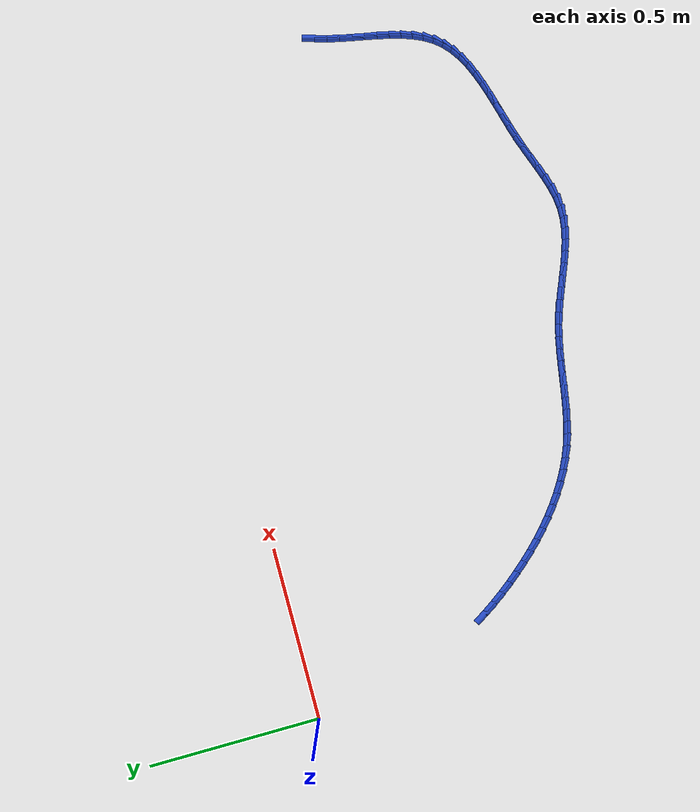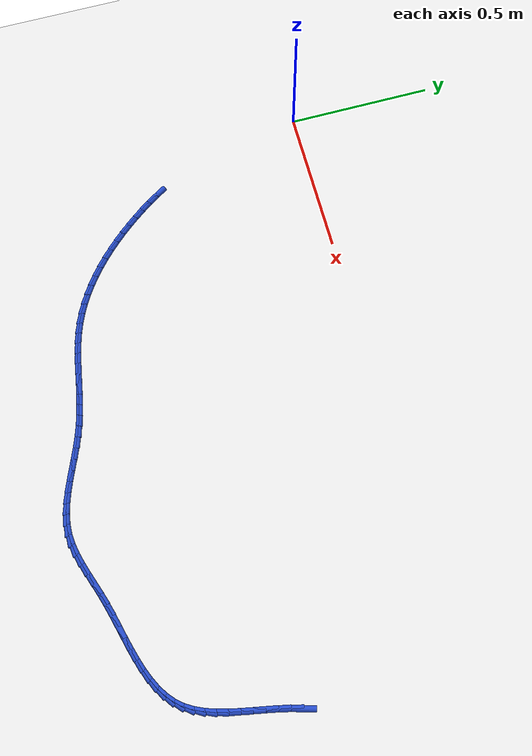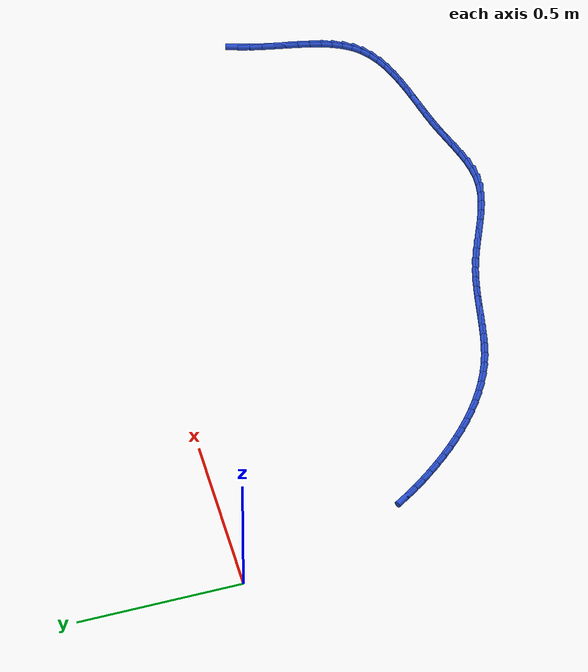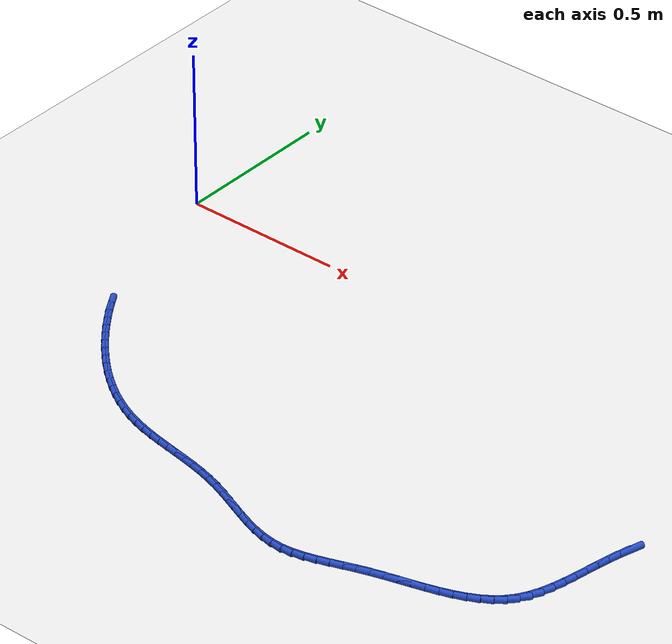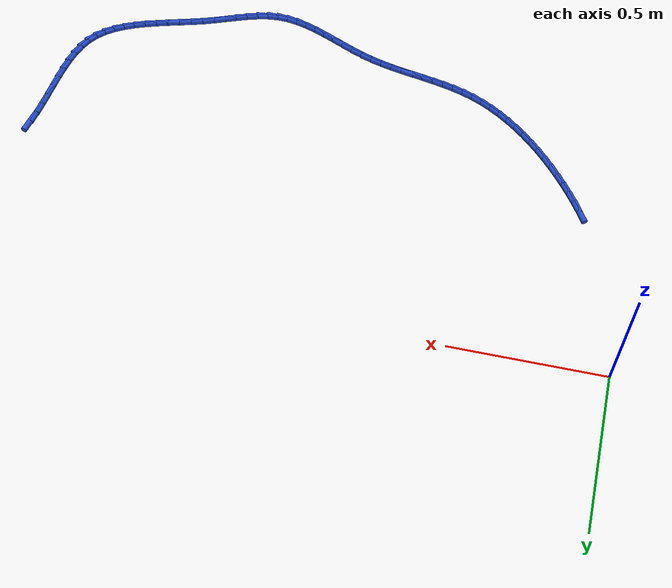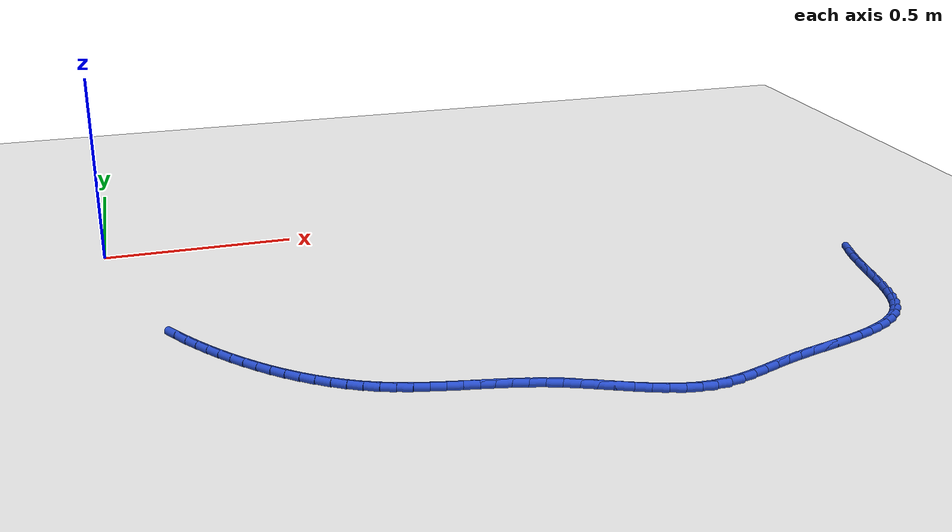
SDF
<sdf version="1.6">
 <world name="default">
  <model name="ground_plane">
   <static>1</static>
   <link name="link">
    <collision name="collision">
     <geometry><plane><normal>0 0 1</normal><size>100 100</size></plane></geometry>
     <surface><friction><ode><mu>100</mu><mu2>50</mu2></ode></friction></surface>
    </collision>
    <visual name="visual">
     <cast_shadows>0</cast_shadows>
     <geometry><plane><normal>0 0 1</normal><size>100 100</size></plane></geometry>
     <material>
      <script><uri>file://media/materials/scripts/gazebo.material</uri><name>Gazebo/WhiteGlow</name></script>
     </material>
    </visual>
   </link>
  </model>
  <model name="line">
   <link name="link_111">
    <pose>1.9547673354920772 -0.5197053380722353 0.01 0 1.57 1.2870785673746663</pose>
    <collision name="collision">
     <geometry><cylinder><radius>0.01</radius><length>0.08</length></cylinder></geometry>
    </collision>
    <visual name="visual">
     <material>
      <script><name>Gazebo/Blue</name><uri>file://media/materials/scripts/gazebo.material</uri></script>
     </material>
     <geometry><cylinder><radius>0.01</radius><length>0.08</length></cylinder></geometry>
    </visual>
   </link>
   <link name="link_112">
    <pose>1.9442324433761768 -0.5558352302679391 0.01 0 1.57 1.3362149796250866</pose>
    <collision name="collision">
     <geometry><cylinder><radius>0.01</radius><length>0.08</length></cylinder></geometry>
    </collision>
    <visual name="visual">
     <material>
      <script><name>Gazebo/Blue</name><uri>file://media/materials/scripts/gazebo.material</uri></script>
     </material>
     <geometry><cylinder><radius>0.01</radius><length>0.08</length></cylinder></geometry>
    </visual>
   </link>
   <link name="link_113">
    <pose>1.9353731261702165 -0.59290643521372 0.01 0 1.57 1.366538693277688</pose>
    <collision name="collision">
     <geometry><cylinder><radius>0.01</radius><length>0.08</length></cylinder></geometry>
    </collision>
    <visual name="visual">
     <material>
      <script><name>Gazebo/Blue</name><uri>file://media/materials/scripts/gazebo.material</uri></script>
     </material>
     <geometry><cylinder><radius>0.01</radius><length>0.08</length></cylinder></geometry>
    </visual>
   </link>
   <link name="link_114">
    <pose>1.9275965317220234 -0.6304479593153932 0.01 0 1.57 1.3790790736784413</pose>
    <collision name="collision">
     <geometry><cylinder><radius>0.01</radius><length>0.08</length></cylinder></geometry>
    </collision>
    <visual name="visual">
     <material>
      <script><name>Gazebo/Blue</name><uri>file://media/materials/scripts/gazebo.material</uri></script>
     </material>
     <geometry><cylinder><radius>0.01</radius><length>0.08</length></cylinder></geometry>
    </visual>
   </link>
   <link name="link_115">
    <pose>1.9203098078794274 -0.6679888089787748 0.01 0 1.57 1.374026778230979</pose>
    <collision name="collision">
     <geometry><cylinder><radius>0.01</radius><length>0.08</length></cylinder></geometry>
    </collision>
    <visual name="visual">
     <material>
      <script><name>Gazebo/Blue</name><uri>file://media/materials/scripts/gazebo.material</uri></script>
     </material>
     <geometry><cylinder><radius>0.01</radius><length>0.08</length></cylinder></geometry>
    </visual>
   </link>
   <link name="link_116">
    <pose>1.9129201024902556 -0.7050579906096804 0.01 0 1.57 1.3506131804759265</pose>
    <collision name="collision">
     <geometry><cylinder><radius>0.01</radius><length>0.08</length></cylinder></geometry>
    </collision>
    <visual name="visual">
     <material>
      <script><name>Gazebo/Blue</name><uri>file://media/materials/scripts/gazebo.material</uri></script>
     </material>
     <geometry><cylinder><radius>0.01</radius><length>0.08</length></cylinder></geometry>
    </visual>
   </link>
   <link name="link_117">
    <pose>1.9048345634023383 -0.741184510613927 0.01 0 1.57 1.307037465918735</pose>
    <collision name="collision">
     <geometry><cylinder><radius>0.01</radius><length>0.08</length></cylinder></geometry>
    </collision>
    <visual name="visual">
     <material>
      <script><name>Gazebo/Blue</name><uri>file://media/materials/scripts/gazebo.material</uri></script>
     </material>
     <geometry><cylinder><radius>0.01</radius><length>0.08</length></cylinder></geometry>
    </visual>
   </link>
   <link name="link_118">
    <pose>1.8954603384635025 -0.7758973753973291 0.01 0 1.57 1.240488761087318</pose>
    <collision name="collision">
     <geometry><cylinder><radius>0.01</radius><length>0.08</length></cylinder></geometry>
    </collision>
    <visual name="visual">
     <material>
      <script><name>Gazebo/Blue</name><uri>file://media/materials/scripts/gazebo.material</uri></script>
     </material>
     <geometry><cylinder><radius>0.01</radius><length>0.08</length></cylinder></geometry>
    </visual>
   </link>
   <link name="link_119">
    <pose>1.8842045755215775 -0.8087255913657043 0.01 0 1.57 1.1474650623564617</pose>
    <collision name="collision">
     <geometry><cylinder><radius>0.01</radius><length>0.08</length></cylinder></geometry>
    </collision>
    <visual name="visual">
     <material>
      <script><name>Gazebo/Blue</name><uri>file://media/materials/scripts/gazebo.material</uri></script>
     </material>
     <geometry><cylinder><radius>0.01</radius><length>0.08</length></cylinder></geometry>
    </visual>
   </link>
   <link name="link_120">
    <pose>1.870474422424392 -0.8391981649248682 0.01 0 1.57 1.0248146214956846</pose>
    <collision name="collision">
     <geometry><cylinder><radius>0.01</radius><length>0.08</length></cylinder></geometry>
    </collision>
    <visual name="visual">
     <material>
      <script><name>Gazebo/Blue</name><uri>file://media/materials/scripts/gazebo.material</uri></script>
     </material>
     <geometry><cylinder><radius>0.01</radius><length>0.08</length></cylinder></geometry>
    </visual>
   </link>
   <link name="link_121">
    <pose>1.8536770270197749 -0.866844102480637 0.01 0 1.57 0.8729196618530354</pose>
    <collision name="collision">
     <geometry><cylinder><radius>0.01</radius><length>0.08</length></cylinder></geometry>
    </collision>
    <visual name="visual">
     <material>
      <script><name>Gazebo/Blue</name><uri>file://media/materials/scripts/gazebo.material</uri></script>
     </material>
     <geometry><cylinder><radius>0.01</radius><length>0.08</length></cylinder></geometry>
    </visual>
   </link>
   <link name="link_122">
    <pose>1.833241203121529 -0.8912111870262845 0.01 0 1.57 0.7173904593773975</pose>
    <collision name="collision">
     <geometry><cylinder><radius>0.01</radius><length>0.08</length></cylinder></geometry>
    </collision>
    <visual name="visual">
     <material>
      <script><name>Gazebo/Blue</name><uri>file://media/materials/scripts/gazebo.material</uri></script>
     </material>
     <geometry><cylinder><radius>0.01</radius><length>0.08</length></cylinder></geometry>
    </visual>
   </link>
   <link name="link_123">
    <pose>1.8090938275280277 -0.9122788427383289 0.01 0 1.57 0.5852152706320818</pose>
    <collision name="collision">
     <geometry><cylinder><radius>0.01</radius><length>0.08</length></cylinder></geometry>
    </collision>
    <visual name="visual">
     <material>
      <script><name>Gazebo/Blue</name><uri>file://media/materials/scripts/gazebo.material</uri></script>
     </material>
     <geometry><cylinder><radius>0.01</radius><length>0.08</length></cylinder></geometry>
    </visual>
   </link>
   <link name="link_124">
    <pose>1.781659698822675 -0.9304580126073972 0.01 0 1.57 0.47893845747454733</pose>
    <collision name="collision">
     <geometry><cylinder><radius>0.01</radius><length>0.08</length></cylinder></geometry>
    </collision>
    <visual name="visual">
     <material>
      <script><name>Gazebo/Blue</name><uri>file://media/materials/scripts/gazebo.material</uri></script>
     </material>
     <geometry><cylinder><radius>0.01</radius><length>0.08</length></cylinder></geometry>
    </visual>
   </link>
   <link name="link_125">
    <pose>1.7513852533149412 -0.9461783917377471 0.01 0 1.57 0.3968623892144433</pose>
    <collision name="collision">
     <geometry><cylinder><radius>0.01</radius><length>0.08</length></cylinder></geometry>
    </collision>
    <visual name="visual">
     <material>
      <script><name>Gazebo/Blue</name><uri>file://media/materials/scripts/gazebo.material</uri></script>
     </material>
     <geometry><cylinder><radius>0.01</radius><length>0.08</length></cylinder></geometry>
    </visual>
   </link>
   <link name="link_126">
    <pose>1.718716927314295 -0.9598696752336366 0.01 0 1.57 0.3360663803707801</pose>
    <collision name="collision">
     <geometry><cylinder><radius>0.01</radius><length>0.08</length></cylinder></geometry>
    </collision>
    <visual name="visual">
     <material>
      <script><name>Gazebo/Blue</name><uri>file://media/materials/scripts/gazebo.material</uri></script>
     </material>
     <geometry><cylinder><radius>0.01</radius><length>0.08</length></cylinder></geometry>
    </visual>
   </link>
   <link name="link_127">
    <pose>1.684101157130207 -0.9719615581993233 0.01 0 1.57 0.29366893942829575</pose>
    <collision name="collision">
     <geometry><cylinder><radius>0.01</radius><length>0.08</length></cylinder></geometry>
    </collision>
    <visual name="visual">
     <material>
      <script><name>Gazebo/Blue</name><uri>file://media/materials/scripts/gazebo.material</uri></script>
     </material>
     <geometry><cylinder><radius>0.01</radius><length>0.08</length></cylinder></geometry>
    </visual>
   </link>
   <link name="link_128">
    <pose>1.647984379072147 -0.982883735739065 0.01 0 1.57 0.2673666494880777</pose>
    <collision name="collision">
     <geometry><cylinder><radius>0.01</radius><length>0.08</length></cylinder></geometry>
    </collision>
    <visual name="visual">
     <material>
      <script><name>Gazebo/Blue</name><uri>file://media/materials/scripts/gazebo.material</uri></script>
     </material>
     <geometry><cylinder><radius>0.01</radius><length>0.08</length></cylinder></geometry>
    </visual>
   </link>
   <link name="link_129">
    <pose>1.6108130294495842 -0.9930659029571193 0.01 0 1.57 0.25558715599111437</pose>
    <collision name="collision">
     <geometry><cylinder><radius>0.01</radius><length>0.08</length></cylinder></geometry>
    </collision>
    <visual name="visual">
     <material>
      <script><name>Gazebo/Blue</name><uri>file://media/materials/scripts/gazebo.material</uri></script>
     </material>
     <geometry><cylinder><radius>0.01</radius><length>0.08</length></cylinder></geometry>
    </visual>
   </link>
   <link name="link_130">
    <pose>1.5730335445719883 -1.0029377549577434 0.01 0 1.57 0.2574891020391714</pose>
    <collision name="collision">
     <geometry><cylinder><radius>0.01</radius><length>0.08</length></cylinder></geometry>
    </collision>
    <visual name="visual">
     <material>
      <script><name>Gazebo/Blue</name><uri>file://media/materials/scripts/gazebo.material</uri></script>
     </material>
     <geometry><cylinder><radius>0.01</radius><length>0.08</length></cylinder></geometry>
    </visual>
   </link>
   <link name="link_131">
    <pose>1.5350923607488296 -1.0129289868451954 0.01 0 1.57 0.2729225586546203</pose>
    <collision name="collision">
     <geometry><cylinder><radius>0.01</radius><length>0.08</length></cylinder></geometry>
    </collision>
    <visual name="visual">
     <material>
      <script><name>Gazebo/Blue</name><uri>file://media/materials/scripts/gazebo.material</uri></script>
     </material>
     <geometry><cylinder><radius>0.01</radius><length>0.08</length></cylinder></geometry>
    </visual>
   </link>
   <link name="link_132">
    <pose>1.497435914289578 -1.0234692937237324 0.01 0 1.57 0.30205258996021045</pose>
    <collision name="collision">
     <geometry><cylinder><radius>0.01</radius><length>0.08</length></cylinder></geometry>
    </collision>
    <visual name="visual">
     <material>
      <script><name>Gazebo/Blue</name><uri>file://media/materials/scripts/gazebo.material</uri></script>
     </material>
     <geometry><cylinder><radius>0.01</radius><length>0.08</length></cylinder></geometry>
    </visual>
   </link>
   <link name="link_133">
    <pose>1.4605052086153005 -1.0349764097586402 0.01 0 1.57 0.330600209666746</pose>
    <collision name="collision">
     <geometry><cylinder><radius>0.01</radius><length>0.08</length></cylinder></geometry>
    </collision>
    <visual name="visual">
     <material>
      <script><name>Gazebo/Blue</name><uri>file://media/materials/scripts/gazebo.material</uri></script>
     </material>
     <geometry><cylinder><radius>0.01</radius><length>0.08</length></cylinder></geometry>
    </visual>
   </link>
   <link name="link_134">
    <pose>1.4244985444492475 -1.047333739686249 0.01 0 1.57 0.3373606441409697</pose>
    <collision name="collision">
     <geometry><cylinder><radius>0.01</radius><length>0.08</length></cylinder></geometry>
    </collision>
    <visual name="visual">
     <material>
      <script><name>Gazebo/Blue</name><uri>file://media/materials/scripts/gazebo.material</uri></script>
     </material>
     <geometry><cylinder><radius>0.01</radius><length>0.08</length></cylinder></geometry>
    </visual>
   </link>
   <link name="link_135">
    <pose>1.3892794039746352 -1.0596875584091172 0.01 0 1.57 0.3194560972445056</pose>
    <collision name="collision">
     <geometry><cylinder><radius>0.01</radius><length>0.08</length></cylinder></geometry>
    </collision>
    <visual name="visual">
     <material>
      <script><name>Gazebo/Blue</name><uri>file://media/materials/scripts/gazebo.material</uri></script>
     </material>
     <geometry><cylinder><radius>0.01</radius><length>0.08</length></cylinder></geometry>
    </visual>
   </link>
   <link name="link_136">
    <pose>1.354686813358083 -1.0711302989504163 0.01 0 1.57 0.2748698638684884</pose>
    <collision name="collision">
     <geometry><cylinder><radius>0.01</radius><length>0.08</length></cylinder></geometry>
    </collision>
    <visual name="visual">
     <material>
      <script><name>Gazebo/Blue</name><uri>file://media/materials/scripts/gazebo.material</uri></script>
     </material>
     <geometry><cylinder><radius>0.01</radius><length>0.08</length></cylinder></geometry>
    </visual>
   </link>
   <link name="link_137">
    <pose>1.3205597987662085 -1.080754394333316 0.01 0 1.57 0.20118512210404974</pose>
    <collision name="collision">
     <geometry><cylinder><radius>0.01</radius><length>0.08</length></cylinder></geometry>
    </collision>
    <visual name="visual">
     <material>
      <script><name>Gazebo/Blue</name><uri>file://media/materials/scripts/gazebo.material</uri></script>
     </material>
     <geometry><cylinder><radius>0.01</radius><length>0.08</length></cylinder></geometry>
    </visual>
   </link>
   <link name="link_138">
    <pose>1.2867373863656313 -1.0876522775809878 0.01 0 1.57 0.09661694382829553</pose>
    <collision name="collision">
     <geometry><cylinder><radius>0.01</radius><length>0.08</length></cylinder></geometry>
    </collision>
    <visual name="visual">
     <material>
      <script><name>Gazebo/Blue</name><uri>file://media/materials/scripts/gazebo.material</uri></script>
     </material>
     <geometry><cylinder><radius>0.01</radius><length>0.08</length></cylinder></geometry>
    </visual>
   </link>
   <link name="link_139">
    <pose>1.25305860232297 -1.0909163817166019 0.01 0 1.57 -0.03272101727902869</pose>
    <collision name="collision">
     <geometry><cylinder><radius>0.01</radius><length>0.08</length></cylinder></geometry>
    </collision>
    <visual name="visual">
     <material>
      <script><name>Gazebo/Blue</name><uri>file://media/materials/scripts/gazebo.material</uri></script>
     </material>
     <geometry><cylinder><radius>0.01</radius><length>0.08</length></cylinder></geometry>
    </visual>
   </link>
   <link name="link_140">
    <pose>1.219376810026298 -1.0898138857128352 0.01 0 1.57 -0.15124935612484985</pose>
    <collision name="collision">
     <geometry><cylinder><radius>0.01</radius><length>0.08</length></cylinder></geometry>
    </collision>
    <visual name="visual">
     <material>
      <script><name>Gazebo/Blue</name><uri>file://media/materials/scripts/gazebo.material</uri></script>
     </material>
     <geometry><cylinder><radius>0.01</radius><length>0.08</length></cylinder></geometry>
    </visual>
   </link>
   <link name="link_141">
    <pose>1.185632242810534 -1.0846707630510084 0.01 0 1.57 -0.24504674444026484</pose>
    <collision name="collision">
     <geometry><cylinder><radius>0.01</radius><length>0.08</length></cylinder></geometry>
    </collision>
    <visual name="visual">
     <material>
      <script><name>Gazebo/Blue</name><uri>file://media/materials/scripts/gazebo.material</uri></script>
     </material>
     <geometry><cylinder><radius>0.01</radius><length>0.08</length></cylinder></geometry>
    </visual>
   </link>
   <link name="link_142">
    <pose>1.1517976806922863 -1.0762096750095187 0.01 0 1.57 -0.31480149050878714</pose>
    <collision name="collision">
     <geometry><cylinder><radius>0.01</radius><length>0.08</length></cylinder></geometry>
    </collision>
    <visual name="visual">
     <material>
      <script><name>Gazebo/Blue</name><uri>file://media/materials/scripts/gazebo.material</uri></script>
     </material>
     <geometry><cylinder><radius>0.01</radius><length>0.08</length></cylinder></geometry>
    </visual>
   </link>
   <link name="link_143">
    <pose>1.1178459609578977 -1.0651539808858403 0.01 0 1.57 -0.3623893679236238</pose>
    <collision name="collision">
     <geometry><cylinder><radius>0.01</radius><length>0.08</length></cylinder></geometry>
    </collision>
    <visual name="visual">
     <material>
      <script><name>Gazebo/Blue</name><uri>file://media/materials/scripts/gazebo.material</uri></script>
     </material>
     <geometry><cylinder><radius>0.01</radius><length>0.08</length></cylinder></geometry>
    </visual>
   </link>
   <link name="link_144">
    <pose>1.0837499208937107 -1.0522270399774485 0.01 0 1.57 -0.38972522922864394</pose>
    <collision name="collision">
     <geometry><cylinder><radius>0.01</radius><length>0.08</length></cylinder></geometry>
    </collision>
    <visual name="visual">
     <material>
      <script><name>Gazebo/Blue</name><uri>file://media/materials/scripts/gazebo.material</uri></script>
     </material>
     <geometry><cylinder><radius>0.01</radius><length>0.08</length></cylinder></geometry>
    </visual>
   </link>
   <link name="link_145">
    <pose>1.0494823977860686 -1.038152211581818 0.01 0 1.57 -0.398209057663946</pose>
    <collision name="collision">
     <geometry><cylinder><radius>0.01</radius><length>0.08</length></cylinder></geometry>
    </collision>
    <visual name="visual">
     <material>
      <script><name>Gazebo/Blue</name><uri>file://media/materials/scripts/gazebo.material</uri></script>
     </material>
     <geometry><cylinder><radius>0.01</radius><length>0.08</length></cylinder></geometry>
    </visual>
   </link>
   <link name="link_146">
    <pose>1.0150162289213118 -1.0236528549964228 0.01 0 1.57 -0.38852495685310634</pose>
    <collision name="collision">
     <geometry><cylinder><radius>0.01</radius><length>0.08</length></cylinder></geometry>
    </collision>
    <visual name="visual">
     <material>
      <script><name>Gazebo/Blue</name><uri>file://media/materials/scripts/gazebo.material</uri></script>
     </material>
     <geometry><cylinder><radius>0.01</radius><length>0.08</length></cylinder></geometry>
    </visual>
   </link>
   <link name="link_147">
    <pose>0.9803242515857842 -1.009452329518738 0.01 0 1.57 -0.36062540035302704</pose>
    <collision name="collision">
     <geometry><cylinder><radius>0.01</radius><length>0.08</length></cylinder></geometry>
    </collision>
    <visual name="visual">
     <material>
      <script><name>Gazebo/Blue</name><uri>file://media/materials/scripts/gazebo.material</uri></script>
     </material>
     <geometry><cylinder><radius>0.01</radius><length>0.08</length></cylinder></geometry>
    </visual>
   </link>
   <link name="link_148">
    <pose>0.9453793030658276 -0.9962739944462384 0.01 0 1.57 -0.31441262809997944</pose>
    <collision name="collision">
     <geometry><cylinder><radius>0.01</radius><length>0.08</length></cylinder></geometry>
    </collision>
    <visual name="visual">
     <material>
      <script><name>Gazebo/Blue</name><uri>file://media/materials/scripts/gazebo.material</uri></script>
     </material>
     <geometry><cylinder><radius>0.01</radius><length>0.08</length></cylinder></geometry>
    </visual>
   </link>
   <link name="link_149">
    <pose>0.9101566057053121 -0.9848195792433871 0.01 0 1.57 -0.26349717340947537</pose>
    <collision name="collision">
     <geometry><cylinder><radius>0.01</radius><length>0.08</length></cylinder></geometry>
    </collision>
    <visual name="visual">
     <material>
      <script><name>Gazebo/Blue</name><uri>file://media/materials/scripts/gazebo.material</uri></script>
     </material>
     <geometry><cylinder><radius>0.01</radius><length>0.08</length></cylinder></geometry>
    </visual>
   </link>
   <link name="link_150">
    <pose>0.8746907975501643 -0.9752519786929652 0.01 0 1.57 -0.22313119086529593</pose>
    <collision name="collision">
     <geometry><cylinder><radius>0.01</radius><length>0.08</length></cylinder></geometry>
    </collision>
    <visual name="visual">
     <material>
      <script><name>Gazebo/Blue</name><uri>file://media/materials/scripts/gazebo.material</uri></script>
     </material>
     <geometry><cylinder><radius>0.01</radius><length>0.08</length></cylinder></geometry>
    </visual>
   </link>
   <link name="link_151">
    <pose>0.8390785814581597 -0.9671712284011587 0.01 0 1.57 -0.19438720559236378</pose>
    <collision name="collision">
     <geometry><cylinder><radius>0.01</radius><length>0.08</length></cylinder></geometry>
    </collision>
    <visual name="visual">
     <material>
      <script><name>Gazebo/Blue</name><uri>file://media/materials/scripts/gazebo.material</uri></script>
     </material>
     <geometry><cylinder><radius>0.01</radius><length>0.08</length></cylinder></geometry>
    </visual>
   </link>
   <link name="link_152">
    <pose>0.8034195754826082 -0.9601509263759543 0.01 0 1.57 -0.1774710959294091</pose>
    <collision name="collision">
     <geometry><cylinder><radius>0.01</radius><length>0.08</length></cylinder></geometry>
    </collision>
    <visual name="visual">
     <material>
      <script><name>Gazebo/Blue</name><uri>file://media/materials/scripts/gazebo.material</uri></script>
     </material>
     <geometry><cylinder><radius>0.01</radius><length>0.08</length></cylinder></geometry>
    </visual>
   </link>
   <link name="link_153">
    <pose>0.7678133976768172 -0.9537646706253383 0.01 0 1.57 -0.17253972522598446</pose>
    <collision name="collision">
     <geometry><cylinder><radius>0.01</radius><length>0.08</length></cylinder></geometry>
    </collision>
    <visual name="visual">
     <material>
      <script><name>Gazebo/Blue</name><uri>file://media/materials/scripts/gazebo.material</uri></script>
     </material>
     <geometry><cylinder><radius>0.01</radius><length>0.08</length></cylinder></geometry>
    </visual>
   </link>
   <link name="link_154">
    <pose>0.7323596660940974 -0.9475860591572975 0.01 0 1.57 -0.17977281827965122</pose>
    <collision name="collision">
     <geometry><cylinder><radius>0.01</radius><length>0.08</length></cylinder></geometry>
    </collision>
    <visual name="visual">
     <material>
      <script><name>Gazebo/Blue</name><uri>file://media/materials/scripts/gazebo.material</uri></script>
     </material>
     <geometry><cylinder><radius>0.01</radius><length>0.08</length></cylinder></geometry>
    </visual>
   </link>
   <link name="link_155">
    <pose>0.697157998787758 -0.9411886899798187 0.01 0 1.57 -0.1993959681775991</pose>
    <collision name="collision">
     <geometry><cylinder><radius>0.01</radius><length>0.08</length></cylinder></geometry>
    </collision>
    <visual name="visual">
     <material>
      <script><name>Gazebo/Blue</name><uri>file://media/materials/scripts/gazebo.material</uri></script>
     </material>
     <geometry><cylinder><radius>0.01</radius><length>0.08</length></cylinder></geometry>
    </visual>
   </link>
   <link name="link_156">
    <pose>0.6623080138111083 -0.9341461611008884 0.01 0 1.57 -0.23164929053815056</pose>
    <collision name="collision">
     <geometry><cylinder><radius>0.01</radius><length>0.08</length></cylinder></geometry>
    </collision>
    <visual name="visual">
     <material>
      <script><name>Gazebo/Blue</name><uri>file://media/materials/scripts/gazebo.material</uri></script>
     </material>
     <geometry><cylinder><radius>0.01</radius><length>0.08</length></cylinder></geometry>
    </visual>
   </link>
   <link name="link_157">
    <pose>0.6279093292174576 -0.9260320705284935 0.01 0 1.57 -0.27669458947961745</pose>
    <collision name="collision">
     <geometry><cylinder><radius>0.01</radius><length>0.08</length></cylinder></geometry>
    </collision>
    <visual name="visual">
     <material>
      <script><name>Gazebo/Blue</name><uri>file://media/materials/scripts/gazebo.material</uri></script>
     </material>
     <geometry><cylinder><radius>0.01</radius><length>0.08</length></cylinder></geometry>
    </visual>
   </link>
   <link name="link_158">
    <pose>0.594061563060115 -0.9164200162706194 0.01 0 1.57 -0.33443732668324105</pose>
    <collision name="collision">
     <geometry><cylinder><radius>0.01</radius><length>0.08</length></cylinder></geometry>
    </collision>
    <visual name="visual">
     <material>
      <script><name>Gazebo/Blue</name><uri>file://media/materials/scripts/gazebo.material</uri></script>
     </material>
     <geometry><cylinder><radius>0.01</radius><length>0.08</length></cylinder></geometry>
    </visual>
   </link>
   <link name="link_159">
    <pose>0.560864240276034 -0.9048842661076141 0.01 0 1.57 -0.39997488895781486</pose>
    <collision name="collision">
     <geometry><cylinder><radius>0.01</radius><length>0.08</length></cylinder></geometry>
    </collision>
    <visual name="visual">
     <material>
      <script><name>Gazebo/Blue</name><uri>file://media/materials/scripts/gazebo.material</uri></script>
     </material>
     <geometry><cylinder><radius>0.01</radius><length>0.08</length></cylinder></geometry>
    </visual>
   </link>
   <link name="link_160">
    <pose>0.5283948761264582 -0.8911574002030993 0.01 0 1.57 -0.4628080751647144</pose>
    <collision name="collision">
     <geometry><cylinder><radius>0.01</radius><length>0.08</length></cylinder></geometry>
    </collision>
    <visual name="visual">
     <material>
      <script><name>Gazebo/Blue</name><uri>file://media/materials/scripts/gazebo.material</uri></script>
     </material>
     <geometry><cylinder><radius>0.01</radius><length>0.08</length></cylinder></geometry>
    </visual>
   </link>
   <link name="link_161">
    <pose>0.49668071535026653 -0.8753335872470704 0.01 0 1.57 -0.5215084731160863</pose>
    <collision name="collision">
     <geometry><cylinder><radius>0.01</radius><length>0.08</length></cylinder></geometry>
    </collision>
    <visual name="visual">
     <material>
      <script><name>Gazebo/Blue</name><uri>file://media/materials/scripts/gazebo.material</uri></script>
     </material>
     <geometry><cylinder><radius>0.01</radius><length>0.08</length></cylinder></geometry>
    </visual>
   </link>
   <link name="link_162">
    <pose>0.4657420166164175 -0.8575572457102747 0.01 0 1.57 -0.5761773316368571</pose>
    <collision name="collision">
     <geometry><cylinder><radius>0.01</radius><length>0.08</length></cylinder></geometry>
    </collision>
    <visual name="visual">
     <material>
      <script><name>Gazebo/Blue</name><uri>file://media/materials/scripts/gazebo.material</uri></script>
     </material>
     <geometry><cylinder><radius>0.01</radius><length>0.08</length></cylinder></geometry>
    </visual>
   </link>
   <link name="link_163">
    <pose>0.4355990385938698 -0.8379727940634579 0.01 0 1.57 -0.6269967651213177</pose>
    <collision name="collision">
     <geometry><cylinder><radius>0.01</radius><length>0.08</length></cylinder></geometry>
    </collision>
    <visual name="visual">
     <material>
      <script><name>Gazebo/Blue</name><uri>file://media/materials/scripts/gazebo.material</uri></script>
     </material>
     <geometry><cylinder><radius>0.01</radius><length>0.08</length></cylinder></geometry>
    </visual>
   </link>
   <link name="link_164">
    <pose>0.4062720399515818 -0.8167246507773657 0.01 0 1.57 -0.6742015528096535</pose>
    <collision name="collision">
     <geometry><cylinder><radius>0.01</radius><length>0.08</length></cylinder></geometry>
    </collision>
    <visual name="visual">
     <material>
      <script><name>Gazebo/Blue</name><uri>file://media/materials/scripts/gazebo.material</uri></script>
     </material>
     <geometry><cylinder><radius>0.01</radius><length>0.08</length></cylinder></geometry>
    </visual>
   </link>
   <link name="link_165">
    <pose>0.3777812793585126 -0.7939572343227452 0.01 0 1.57 -0.7180566055183685</pose>
    <collision name="collision">
     <geometry><cylinder><radius>0.01</radius><length>0.08</length></cylinder></geometry>
    </collision>
    <visual name="visual">
     <material>
      <script><name>Gazebo/Blue</name><uri>file://media/materials/scripts/gazebo.material</uri></script>
     </material>
     <geometry><cylinder><radius>0.01</radius><length>0.08</length></cylinder></geometry>
    </visual>
   </link>
   <link name="link_166">
    <pose>0.35014701548362104 -0.7698149631703423 0.01 0 1.57 -0.7588401396099068</pose>
    <collision name="collision">
     <geometry><cylinder><radius>0.01</radius><length>0.08</length></cylinder></geometry>
    </collision>
    <visual name="visual">
     <material>
      <script><name>Gazebo/Blue</name><uri>file://media/materials/scripts/gazebo.material</uri></script>
     </material>
     <geometry><cylinder><radius>0.01</radius><length>0.08</length></cylinder></geometry>
    </visual>
   </link>
   <link name="link_167">
    <pose>0.3233895069958647 -0.7444422557909021 0.01 0 1.57 -0.7968319087740319</pose>
    <collision name="collision">
     <geometry><cylinder><radius>0.01</radius><length>0.08</length></cylinder></geometry>
    </collision>
    <visual name="visual">
     <material>
      <script><name>Gazebo/Blue</name><uri>file://media/materials/scripts/gazebo.material</uri></script>
     </material>
     <geometry><cylinder><radius>0.01</radius><length>0.08</length></cylinder></geometry>
    </visual>
   </link>
   <link name="link_168">
    <pose>0.29752901256420283 -0.7179835306551715 0.01 0 1.57 -0.8323055761819692</pose>
    <collision name="collision">
     <geometry><cylinder><radius>0.01</radius><length>0.08</length></cylinder></geometry>
    </collision>
    <visual name="visual">
     <material>
      <script><name>Gazebo/Blue</name><uri>file://media/materials/scripts/gazebo.material</uri></script>
     </material>
     <geometry><cylinder><radius>0.01</radius><length>0.08</length></cylinder></geometry>
    </visual>
   </link>
   <link name="link_169">
    <pose>0.27258579085759405 -0.6905832062338967 0.01 0 1.57 -0.8655242989248019</pose>
    <collision name="collision">
     <geometry><cylinder><radius>0.01</radius><length>0.08</length></cylinder></geometry>
    </collision>
    <visual name="visual">
     <material>
      <script><name>Gazebo/Blue</name><uri>file://media/materials/scripts/gazebo.material</uri></script>
     </material>
     <geometry><cylinder><radius>0.01</radius><length>0.08</length></cylinder></geometry>
    </visual>
   </link>
   <link name="link_170">
    <pose>0.2485801005449969 -0.6623857009978237 0.01 0 1.57 -0.8967387166597143</pose>
    <collision name="collision">
     <geometry><cylinder><radius>0.01</radius><length>0.08</length></cylinder></geometry>
    </collision>
    <visual name="visual">
     <material>
      <script><name>Gazebo/Blue</name><uri>file://media/materials/scripts/gazebo.material</uri></script>
     </material>
     <geometry><cylinder><radius>0.01</radius><length>0.08</length></cylinder></geometry>
    </visual>
   </link>
   <link name="link_171">
    <pose>0.22553220029537024 -0.6335354334176988 0.01 0 1.57 -0.9262040597540243</pose>
    <collision name="collision">
     <geometry><cylinder><radius>0.01</radius><length>0.08</length></cylinder></geometry>
    </collision>
    <visual name="visual">
     <material>
      <script><name>Gazebo/Blue</name><uri>file://media/materials/scripts/gazebo.material</uri></script>
     </material>
     <geometry><cylinder><radius>0.01</radius><length>0.08</length></cylinder></geometry>
    </visual>
   </link>
   <link name="link_172">
    <pose>0.20346234751427877 -0.6041757595050868 0.01 0 1.57 -0.9551055165058565</pose>
    <collision name="collision">
     <geometry><cylinder><radius>0.01</radius><length>0.08</length></cylinder></geometry>
    </collision>
    <visual name="visual">
     <material>
      <script><name>Gazebo/Blue</name><uri>file://media/materials/scripts/gazebo.material</uri></script>
     </material>
     <geometry><cylinder><radius>0.01</radius><length>0.08</length></cylinder></geometry>
    </visual>
   </link>
   <link name="link_173">
    <pose>0.18239072742051332 -0.5743893293640443 0.01 0 1.57 -0.9849799701456164</pose>
    <collision name="collision">
     <geometry><cylinder><radius>0.01</radius><length>0.08</length></cylinder></geometry>
    </collision>
    <visual name="visual">
     <material>
      <script><name>Gazebo/Blue</name><uri>file://media/materials/scripts/gazebo.material</uri></script>
     </material>
     <geometry><cylinder><radius>0.01</radius><length>0.08</length></cylinder></geometry>
    </visual>
   </link>
   <link name="link_174">
    <pose>0.1623374153749623 -0.5441664074226727 0.01 0 1.57 -1.0159122224662336</pose>
    <collision name="collision">
     <geometry><cylinder><radius>0.01</radius><length>0.08</length></cylinder></geometry>
    </collision>
    <visual name="visual">
     <material>
      <script><name>Gazebo/Blue</name><uri>file://media/materials/scripts/gazebo.material</uri></script>
     </material>
     <geometry><cylinder><radius>0.01</radius><length>0.08</length></cylinder></geometry>
    </visual>
   </link>
  </model>
 </world>
</sdf>
